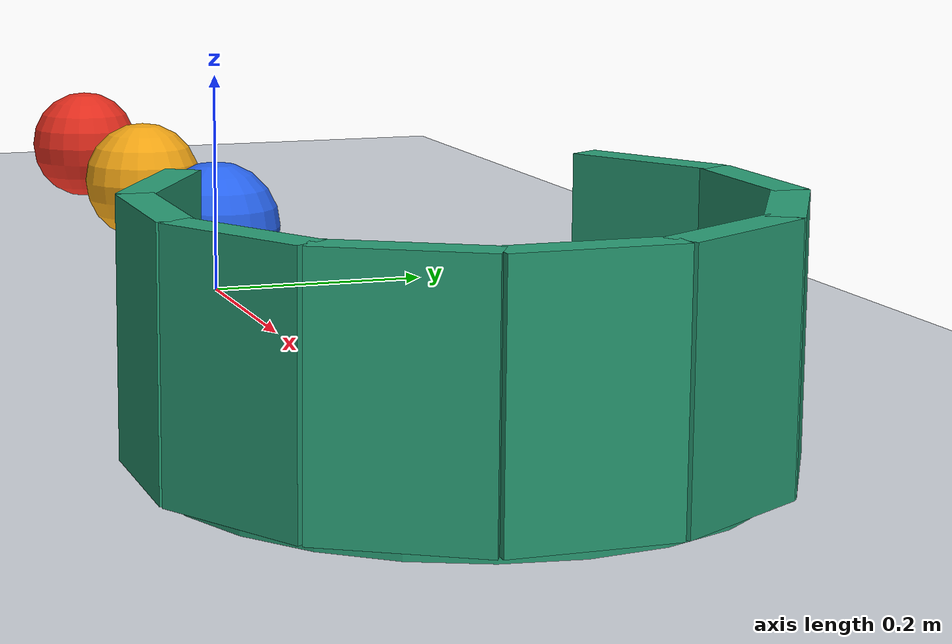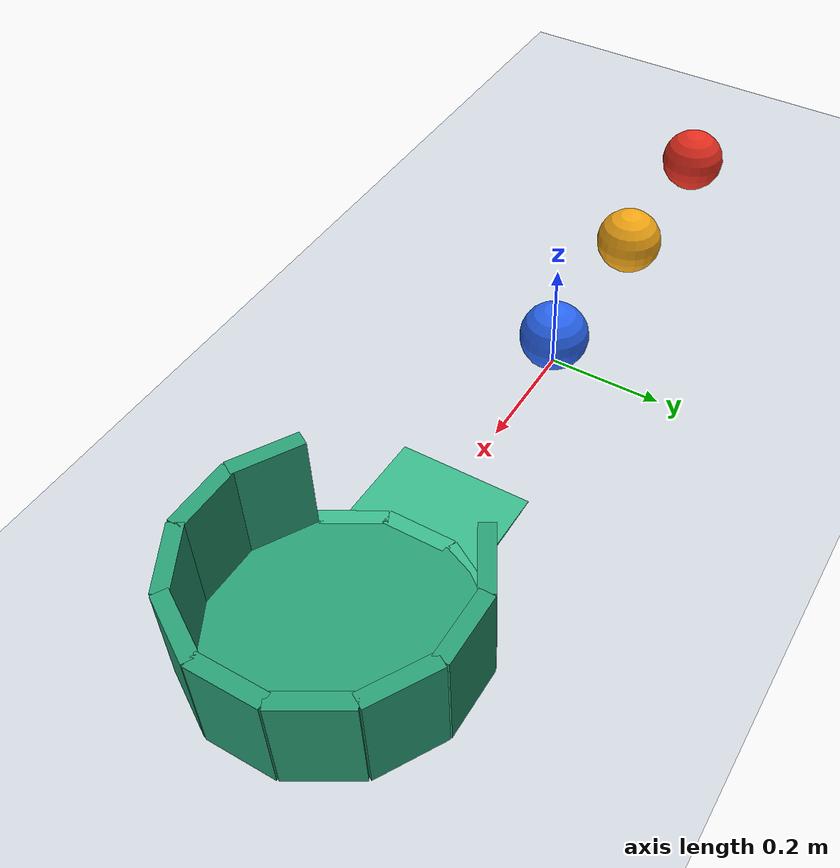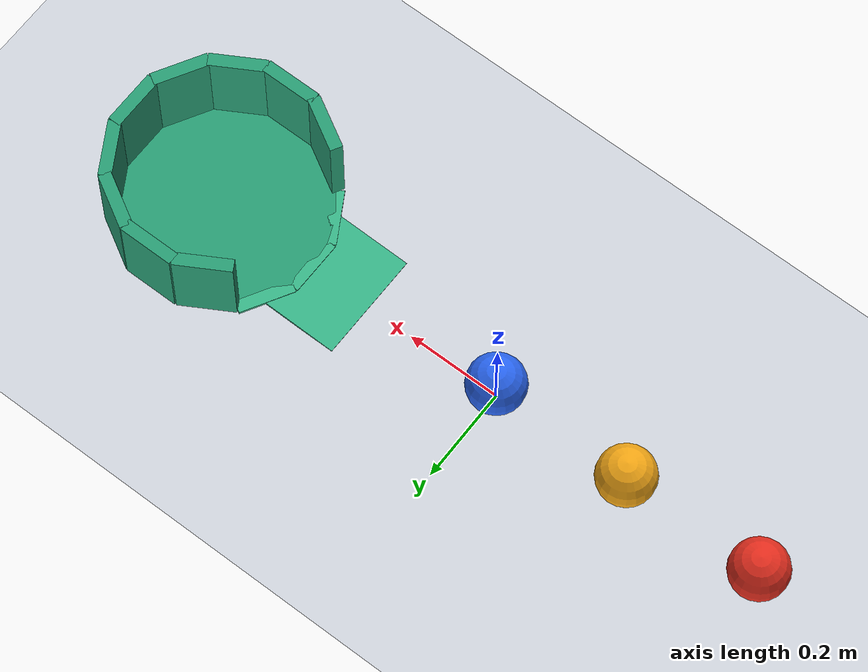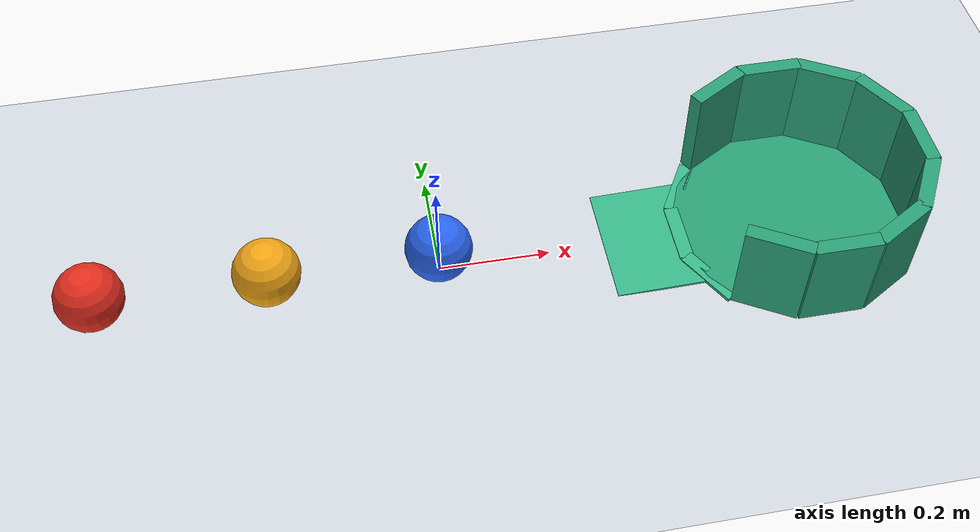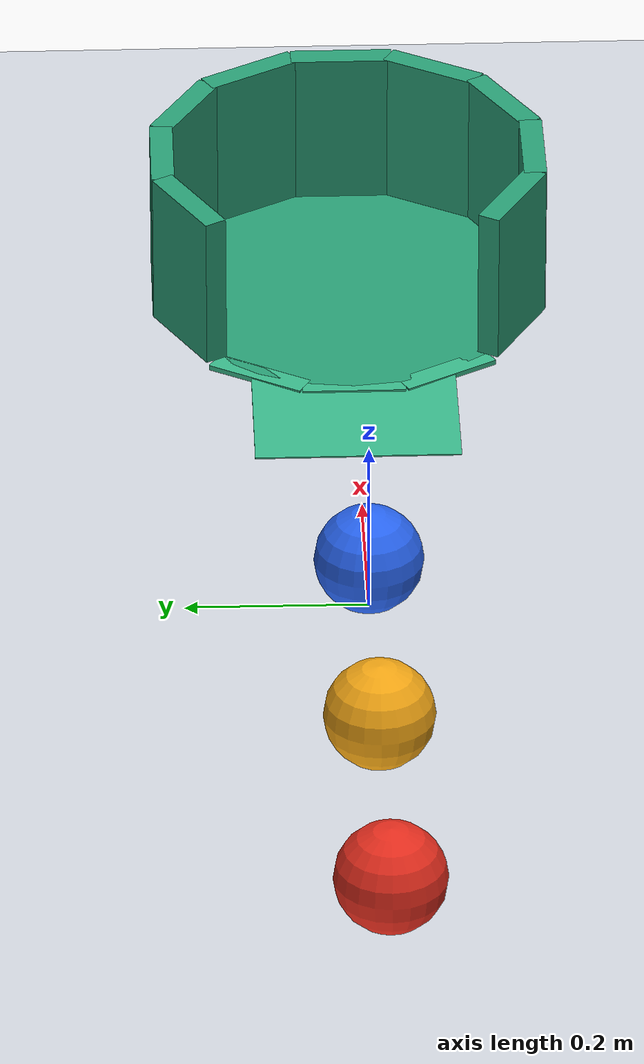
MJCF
<mujoco model="three_ball_chain_into_cup">
  <compiler angle="radian"/>
  <option timestep="0.002" gravity="0 0 -9.81" integrator="implicitfast" solver="Newton" iterations="80" cone="elliptic"/>
  <visual>
    <global azimuth="135" elevation="-25"/>
  </visual>

  <worldbody>
    <light name="overhead_light" pos="0 0 3" dir="0 0 -1" diffuse="0.85 0.85 0.85"/>
    <camera name="overview" pos="0.1 -2.4 1.7" xyaxes="1 0 0 0 0.578 0.816"/>

    <geom name="floor" type="plane" size="3 2 0.1" rgba="0.82 0.84 0.87 1" friction="0.65 0.001 0.0001" condim="6" solref="0.006 1" solimp="0.95 0.99 0.001"/>

    <body name="ball1" pos="-0.60 0 0.06">
      <freejoint name="ball1_free"/>
      <geom name="ball1_sphere" type="sphere" size="0.06" mass="0.12" rgba="0.9 0.18 0.12 1" friction="0.65 0.001 0.003" condim="6" solref="0.006 1" solimp="0.95 0.99 0.001"/>
    </body>

    <body name="ball2" pos="-0.30 0 0.06">
      <freejoint name="ball2_free"/>
      <geom name="ball2_sphere" type="sphere" size="0.06" mass="0.12" rgba="0.95 0.65 0.08 1" friction="0.65 0.001 0.003" condim="6" solref="0.006 1" solimp="0.95 0.99 0.001"/>
    </body>

    <body name="ball3" pos="0 0 0.06">
      <freejoint name="ball3_free"/>
      <geom name="ball3_sphere" type="sphere" size="0.06" mass="0.12" rgba="0.16 0.4 0.95 1" friction="0.65 0.001 0.0005" condim="6" solref="0.006 1" solimp="0.95 0.99 0.001"/>
    </body>

    <body name="cup" pos="0.65 0 0">
      <geom name="cup_base" type="cylinder" pos="0 0 0.003" size="0.213 0.003" rgba="0.16 0.62 0.46 1" friction="0.7 0.003 0.006" condim="6" solref="0.008 1" solimp="0.95 0.99 0.001"/>
      <geom name="cup_entry_ramp" type="box" pos="-0.25 0 0.001" quat="0.9998876 0 -0.014995 0" size="0.10 0.115 0.002" rgba="0.22 0.72 0.54 1" friction="0.65 0.001 0.0001" condim="6" solref="0.008 1" solimp="0.95 0.99 0.001"/>

      <geom name="cup_wall_0" type="box" pos="0.21 0 0.098" size="0.013 0.058 0.09" rgba="0.16 0.62 0.46 1" friction="0.7 0.003 0.006" condim="6" solref="0.008 1"/>
      <geom name="cup_wall_30" type="box" pos="0.181865 0.105 0.098" quat="0.965926 0 0 0.258819" size="0.013 0.058 0.09" rgba="0.16 0.62 0.46 1" friction="0.7 0.003 0.006" condim="6" solref="0.008 1"/>
      <geom name="cup_wall_60" type="box" pos="0.105 0.181865 0.098" quat="0.866025 0 0 0.5" size="0.013 0.058 0.09" rgba="0.16 0.62 0.46 1" friction="0.7 0.003 0.006" condim="6" solref="0.008 1"/>
      <geom name="cup_wall_90" type="box" pos="0 0.21 0.098" quat="0.707107 0 0 0.707107" size="0.013 0.058 0.09" rgba="0.16 0.62 0.46 1" friction="0.7 0.003 0.006" condim="6" solref="0.008 1"/>
      <geom name="cup_wall_120" type="box" pos="-0.105 0.181865 0.098" quat="0.5 0 0 0.866025" size="0.013 0.058 0.09" rgba="0.16 0.62 0.46 1" friction="0.7 0.003 0.006" condim="6" solref="0.008 1"/>

      <geom name="cup_lip_150" type="box" pos="-0.181865 0.105 0.003" quat="0.258819 0 0 0.965926" size="0.013 0.058 0.003" rgba="0.22 0.72 0.54 1" friction="0.65 0.001 0.0005" condim="6" solref="0.008 1"/>
      <geom name="cup_lip_180" type="box" pos="-0.21 0 0.003" quat="0 0 0 1" size="0.013 0.058 0.003" rgba="0.22 0.72 0.54 1" friction="0.65 0.001 0.0005" condim="6" solref="0.008 1"/>
      <geom name="cup_lip_210" type="box" pos="-0.181865 -0.105 0.003" quat="-0.258819 0 0 0.965926" size="0.013 0.058 0.003" rgba="0.22 0.72 0.54 1" friction="0.65 0.001 0.0005" condim="6" solref="0.008 1"/>

      <geom name="cup_wall_240" type="box" pos="-0.105 -0.181865 0.098" quat="-0.5 0 0 0.866025" size="0.013 0.058 0.09" rgba="0.16 0.62 0.46 1" friction="0.7 0.003 0.006" condim="6" solref="0.008 1"/>
      <geom name="cup_wall_270" type="box" pos="0 -0.21 0.098" quat="-0.707107 0 0 0.707107" size="0.013 0.058 0.09" rgba="0.16 0.62 0.46 1" friction="0.7 0.003 0.006" condim="6" solref="0.008 1"/>
      <geom name="cup_wall_300" type="box" pos="0.105 -0.181865 0.098" quat="-0.866025 0 0 0.5" size="0.013 0.058 0.09" rgba="0.16 0.62 0.46 1" friction="0.7 0.003 0.006" condim="6" solref="0.008 1"/>
      <geom name="cup_wall_330" type="box" pos="0.181865 -0.105 0.098" quat="-0.965926 0 0 0.258819" size="0.013 0.058 0.09" rgba="0.16 0.62 0.46 1" friction="0.7 0.003 0.006" condim="6" solref="0.008 1"/>
    </body>
  </worldbody>

  <contact>
    <pair name="ball1_ball2_collision" geom1="ball1_sphere" geom2="ball2_sphere" condim="1" solref="0.004 0.12" solimp="0.95 0.99 0.001"/>
    <pair name="ball2_ball3_collision" geom1="ball2_sphere" geom2="ball3_sphere" condim="1" solref="0.004 0.12" solimp="0.95 0.99 0.001"/>
    <pair name="ball1_ball3_collision" geom1="ball1_sphere" geom2="ball3_sphere" condim="1" solref="0.004 0.12" solimp="0.95 0.99 0.001"/>
  </contact>

  <keyframe>
    <key name="start" qpos="-0.60 0 0.06 1 0 0 0 -0.30 0 0.06 1 0 0 0 0 0 0.06 1 0 0 0" qvel="1.5 0 0 0 25 0 0 0 0 0 0 0 0 0 0 0 0 0"/>
  </keyframe>
</mujoco>
